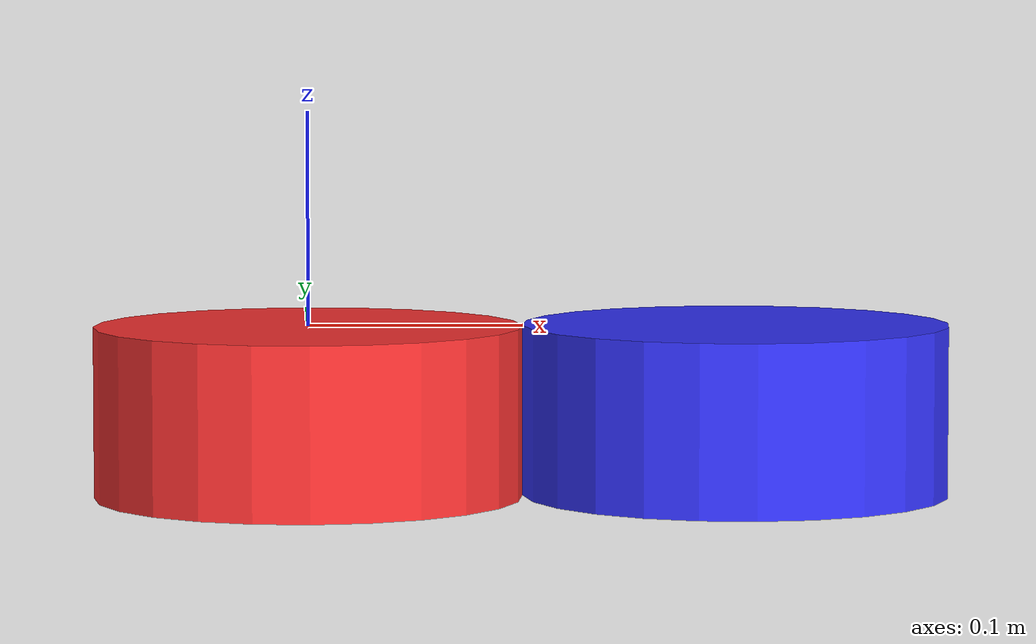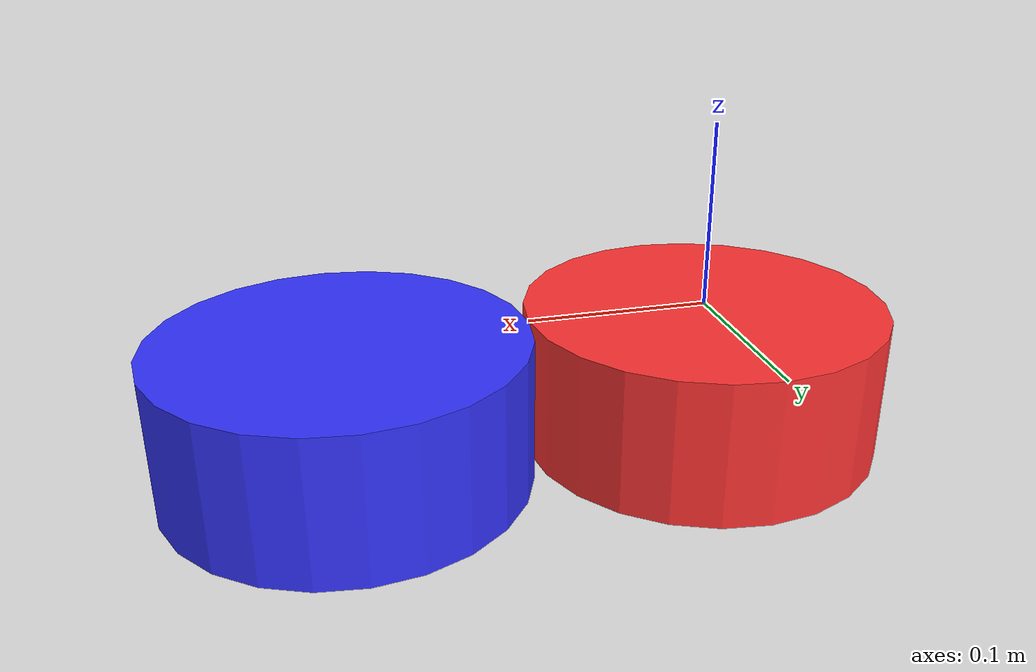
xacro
<robot xmlns:xacro="http://www.ros.org/wiki/xacro" name="coin_paradox_gear">

    <!-- 两个完全一样齿轮 -->
    <xacro:property name="r" value="0.1" />
    <xacro:property name="width" value="0.08" />
    <xacro:property name="orbit_radius" value="${r + r}" />

    <link name="base_link" />

    <!-- ========== 固定齿轮1（红色） ========== -->
    <link name="gear1_link">
        <visual>
            <origin xyz="0 0 -${width/2.0}" rpy="0 0 0" />
            <geometry>
                <cylinder radius="${r}" length="${width}" />
            </geometry>
            <material name="red">
                <color rgba="1 0.2 0.2 1" />
            </material>
        </visual>
    </link>

    <joint name="gear1_fixed" type="fixed">
        <parent link="base_link" />
        <child link="gear1_link" />
        <origin xyz="0 0 0" />
    </joint>

    <!-- ========== 公转载体 orbit_carrier ========== -->
    <link name="orbit_carrier" />

    <joint name="orbit_joint" type="continuous">
        <parent link="base_link" />
        <child link="orbit_carrier" />
        <origin xyz="0 0 0" />
        <axis xyz="0 0 1" />
    </joint>

    <!-- ========== 滚动齿轮2（蓝色） ========== -->
    <link name="gear2_link">
        <visual>
            <origin xyz="0 0 -${width/2.0}" rpy="0 0 0" />
            <geometry>
                <cylinder radius="${r}" length="${width}" />
            </geometry>
            <material name="blue">
                <color rgba="0.2 0.2 1 1" />
            </material>
        </visual>
    </link>

    <joint name="spin_joint" type="continuous">
        <parent link="orbit_carrier" />
        <child link="gear2_link" />
        <origin xyz="${orbit_radius} 0 0" />
        <axis xyz="0 0 1" />
        <!-- ★ 关键：让 spin_joint 跟随 orbit_joint，比例 1:1 -->
        <mimic joint="orbit_joint" multiplier="1" offset="0" />
    </joint>

</robot>
